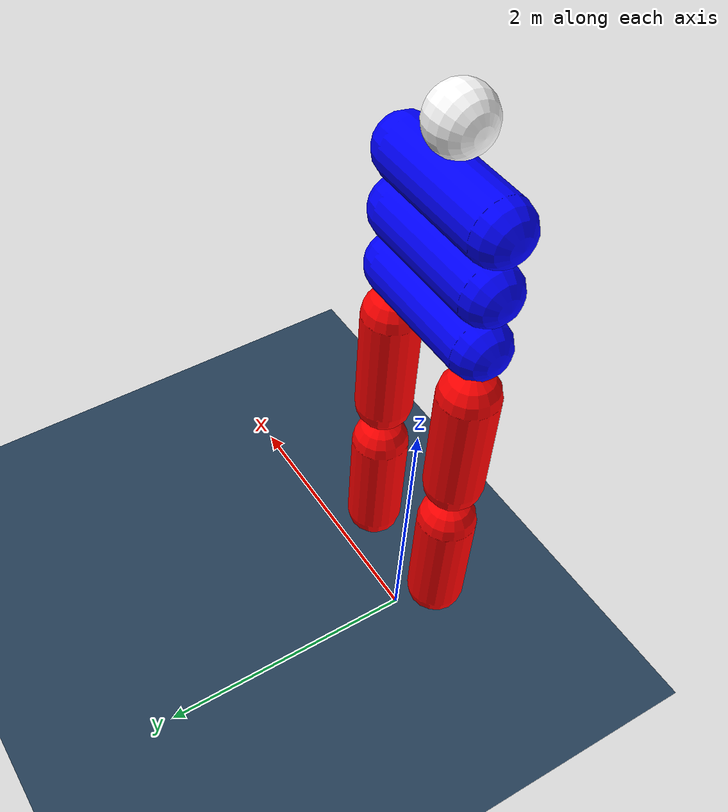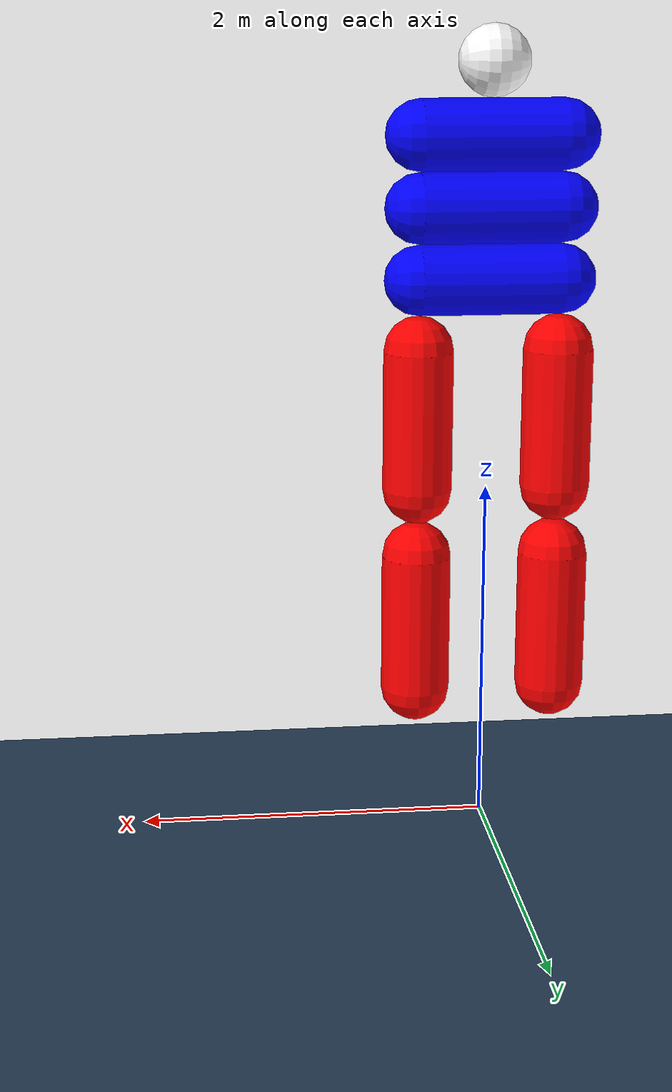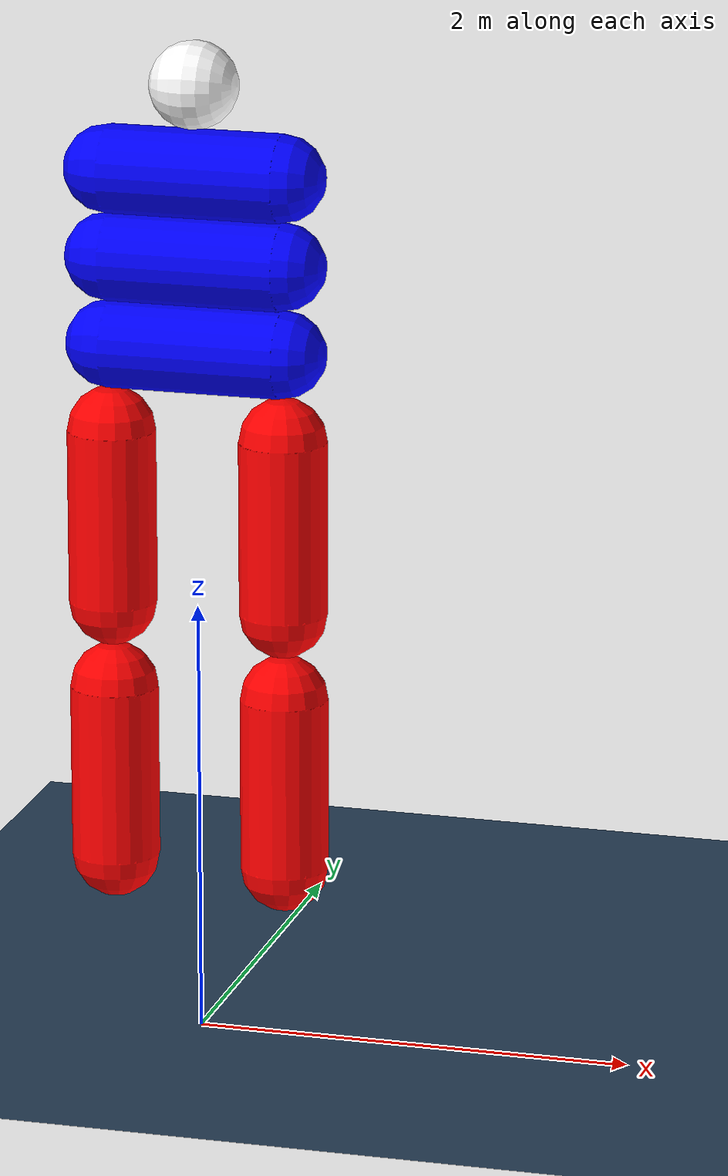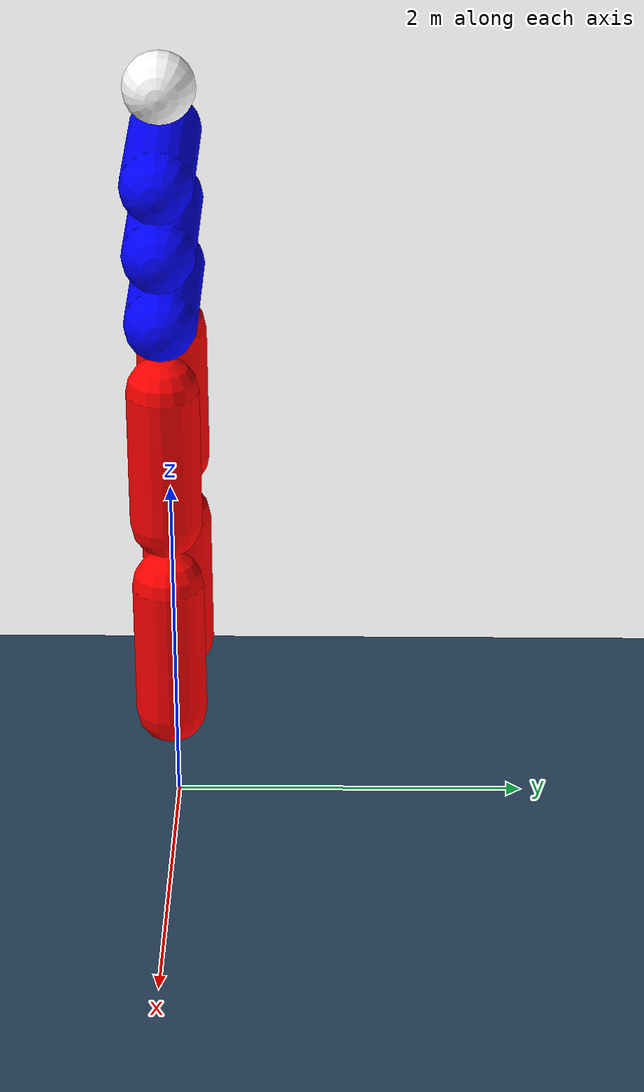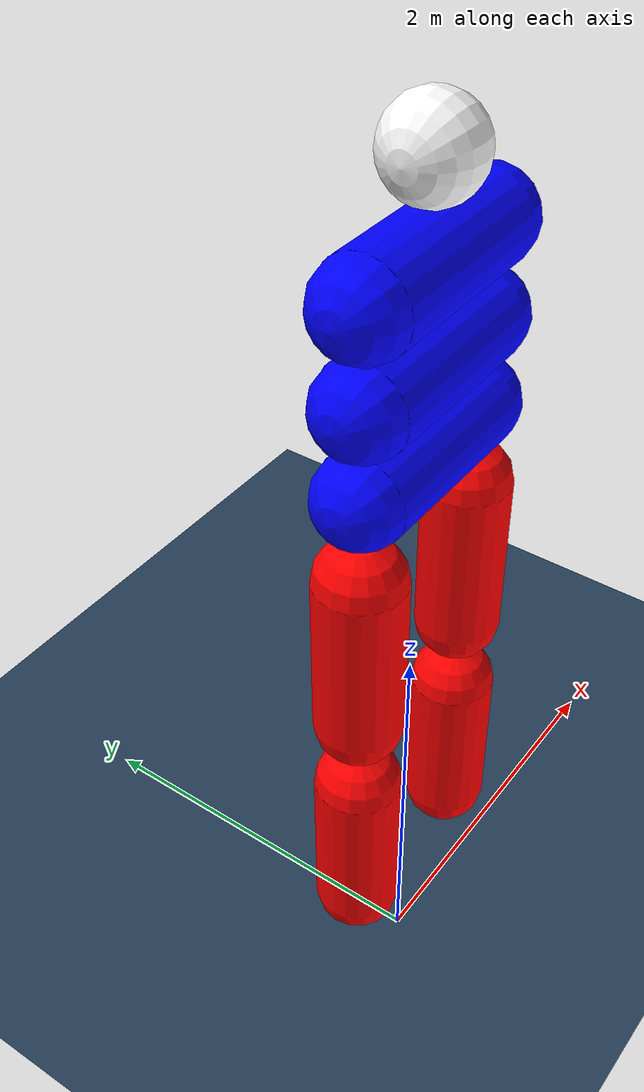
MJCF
<!-- xml file for biped  -->

<mujoco>
    <option gravity = "0 0 -10" />

    <asset>
        <texture type="skybox" builtin="gradient" rgb1=".3 .5 .7" rgb2="0 0 0" width="32" height="512"/>
        <texture name="body" type="cube" builtin="flat" mark="cross" width="128" height="128" rgb1="0.8 0.6 0.4" rgb2="0.8 0.6 0.4" markrgb="1 1 1" random="0.01"/>
        <material name="body" texture="body" texuniform="true" rgba="0.8 0.6 .4 1"/>
        <texture name="grid" type="2d" builtin="checker" width="512" height="512" rgb1=".1 .2 .3" rgb2=".2 .3 .4"/>
        <material name="grid" texture="grid" texrepeat="1 1" texuniform="true" reflectance=".2"/>
    </asset>

    <worldbody>
        <geom name="floor" size="0 0 .05" type="plane" material="grid" condim="3"/>
        <body name="torso1" pos="0 0 4" euler="0 90 0">
            <freejoint name="root"/>
            <geom type="capsule" size="0.2 0.4" rgba="0 0 1 1" mass="4"/>
            <site name="torso1Site" type="box" group="0" rgba="1 1 1 0.5" size="0.005 0.005 0.005" />

            <body name="torso2" pos="0.4 0 0" euler="0 0 0">
                <geom type="capsule" size="0.2 0.4" rgba="0 0 1 1" mass="4"/>

                <body name="torso3" pos="0.4 0 0" euler="0 0 0">
                <geom type="capsule" size="0.2 0.4" rgba="0 0 1 1" mass="4"/>

                    <body name= "leftThigh" pos="0.8 0 -0.4" euler="90 -90 0">
                        <joint name="hipLeft" type="hinge" axis = "0 1 0" pos = "0 0 0.4"/>
                        <geom type="capsule" size="0.2 0.4" rgba="1 0 0 1" mass="1"/>

                        <body name= "leftShin" pos="0 0 -1.2" euler="0 0 0">
                            <joint name="kneeLeft" type="hinge" axis = "0 1 0" pos = "0 0 0.6"/>
                            <geom type="capsule" size="0.2 0.4" rgba="1 0 0 1" mass="1"/>

                        </body>

                    </body>

                    <body name= "rightThigh" pos="0.8 0 0.4" euler="90 -90 0">
                        <joint name="hipRight" type="hinge" axis = "0 1 0" pos = "0 0 0.4"/>
                        <geom type="capsule" size="0.2 0.4" rgba="1 0 0 1" mass="1"/>

                        <body name= "rightShin" pos="0 0 -1.2" euler="0 0 0">
                            <joint name="kneeRight" type="hinge" axis = "0 1 0" pos = "0 0 0.6"/>
                            <geom type="capsule" size="0.2 0.4" rgba="1 0 0 1" mass="1"/>

                        </body>
                    </body>
                </body>
            </body>

            <body name="head" pos="-0.4 0 0" euler="0 0 0">
                <geom type="sphere" size="0.2" rgba="1 1 1 1" mass="4"/>
            </body>

        </body>
    </worldbody>

   <actuator>
        <motor name="torqueL0" joint="hipLeft"   gear ="1" />
        <motor name="torqueL1" joint="kneeLeft"  gear ="1" />
        <motor name="torqueR0" joint="hipRight"  gear ="1" />
        <motor name="torqueR1" joint="kneeRight" gear ="1" />
   </actuator>

    <sensor>
        <framepos name="pose" objname="torso1" objtype="body" />
        <velocimeter name="velo" site="torso1Site" />
    </sensor>

</mujoco>
